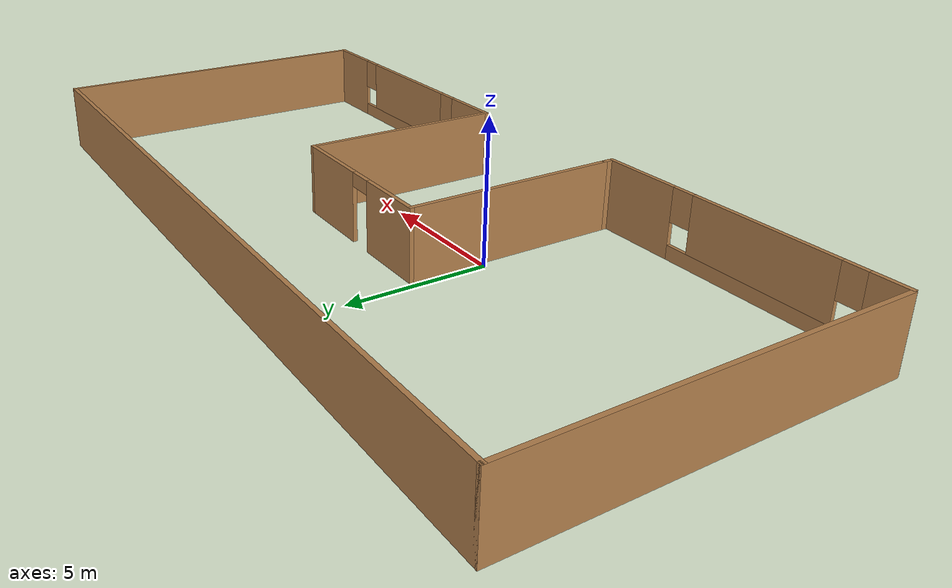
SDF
<?xml version='1.0'?>
<sdf version='1.7'>
  <model name='room'>
    <pose>3.70318 1.20762 0 0 -0 0</pose>
    <link name='Wall_30'>
      <collision name='Wall_30_Collision'>
        <geometry>
          <box>
            <size>13.25 0.15 2.5</size>
          </box>
        </geometry>
        <pose>0 0 1.25 0 -0 0</pose>
      </collision>
      <visual name='Wall_30_Visual'>
        <pose>0 0 1.25 0 -0 0</pose>
        <geometry>
          <box>
            <size>13.25 0.15 2.5</size>
          </box>
        </geometry>
        <material>
          <script>
            <uri>file://media/materials/scripts/gazebo.material</uri>
            <name>Gazebo/Wood</name>
          </script>
          <ambient>1 1 1 1</ambient>
        </material>
        <meta>
          <layer>0</layer>
        </meta>
      </visual>
      <pose>-14.3 0.049999 0 0 -0 1.5708</pose>
    </link>
    <link name='Wall_31'>
      <collision name='Wall_31_Collision'>
        <geometry>
          <box>
            <size>28.75 0.15 2.5</size>
          </box>
        </geometry>
        <pose>0 0 1.25 0 -0 0</pose>
      </collision>
      <visual name='Wall_31_Visual'>
        <pose>0 0 1.25 0 -0 0</pose>
        <geometry>
          <box>
            <size>28.75 0.15 2.5</size>
          </box>
        </geometry>
        <material>
          <script>
            <uri>file://media/materials/scripts/gazebo.material</uri>
            <name>Gazebo/Wood</name>
          </script>
          <ambient>1 1 1 1</ambient>
        </material>
        <meta>
          <layer>0</layer>
        </meta>
      </visual>
      <pose>-0 6.6 0 0 -0 0</pose>
    </link>
    <link name='Wall_34'>
      <collision name='Wall_34_Collision'>
        <geometry>
          <box>
            <size>12.75 0.15 2.5</size>
          </box>
        </geometry>
        <pose>0 0 1.25 0 -0 0</pose>
      </collision>
      <visual name='Wall_34_Visual'>
        <pose>0 0 1.25 0 -0 0</pose>
        <geometry>
          <box>
            <size>12.75 0.15 2.5</size>
          </box>
        </geometry>
        <material>
          <script>
            <uri>file://media/materials/scripts/gazebo.material</uri>
            <name>Gazebo/Wood</name>
          </script>
          <ambient>1 1 1 1</ambient>
        </material>
        <meta>
          <layer>0</layer>
        </meta>
      </visual>
      <pose>14.3 0.299999 0 0 -0 -1.5708</pose>
    </link>
    <link name='Wall_37'>
      <pose>8.625 -6 0 0 -0 3.14159</pose>
      <visual name='Wall_37_Visual_0'>
        <pose>-4.55074 0 1.25 0 -0 0</pose>
        <geometry>
          <box>
            <size>2.39852 0.15 2.5</size>
          </box>
        </geometry>
        <material>
          <script>
            <uri>file://media/materials/scripts/gazebo.material</uri>
            <name>Gazebo/Wood</name>
          </script>
          <ambient>1 1 1 1</ambient>
        </material>
        <meta>
          <layer>0</layer>
        </meta>
      </visual>
      <collision name='Wall_37_Collision_0'>
        <geometry>
          <box>
            <size>2.39852 0.15 2.5</size>
          </box>
        </geometry>
        <pose>-4.55074 0 1.25 0 -0 0</pose>
      </collision>
      <visual name='Wall_37_Visual_1'>
        <pose>1.19926 0 0.25 0 -0 0</pose>
        <geometry>
          <box>
            <size>9.10148 0.15 0.5</size>
          </box>
        </geometry>
        <material>
          <script>
            <uri>file://media/materials/scripts/gazebo.material</uri>
            <name>Gazebo/Wood</name>
          </script>
          <ambient>1 1 1 1</ambient>
        </material>
        <meta>
          <layer>0</layer>
        </meta>
      </visual>
      <collision name='Wall_37_Collision_1'>
        <geometry>
          <box>
            <size>9.10148 0.15 0.5</size>
          </box>
        </geometry>
        <pose>1.19926 0 0.25 0 -0 0</pose>
      </collision>
      <visual name='Wall_37_Visual_2'>
        <pose>0.05985 0 1.5 0 -0 0</pose>
        <geometry>
          <box>
            <size>5.22267 0.15 2</size>
          </box>
        </geometry>
        <material>
          <script>
            <uri>file://media/materials/scripts/gazebo.material</uri>
            <name>Gazebo/Wood</name>
          </script>
          <ambient>1 1 1 1</ambient>
        </material>
        <meta>
          <layer>0</layer>
        </meta>
      </visual>
      <collision name='Wall_37_Collision_2'>
        <geometry>
          <box>
            <size>5.22267 0.15 2</size>
          </box>
        </geometry>
        <pose>0.05985 0 1.5 0 -0 0</pose>
      </collision>
      <visual name='Wall_37_Visual_3'>
        <pose>4.61059 0 1.5 0 -0 0</pose>
        <geometry>
          <box>
            <size>2.27882 0.15 2</size>
          </box>
        </geometry>
        <material>
          <script>
            <uri>file://media/materials/scripts/gazebo.material</uri>
            <name>Gazebo/Wood</name>
          </script>
          <ambient>1 1 1 1</ambient>
        </material>
        <meta>
          <layer>0</layer>
        </meta>
      </visual>
      <collision name='Wall_37_Collision_3'>
        <geometry>
          <box>
            <size>2.27882 0.15 2</size>
          </box>
        </geometry>
        <pose>4.61059 0 1.5 0 -0 0</pose>
      </collision>
      <visual name='Wall_37_Visual_4'>
        <pose>-2.95148 0 1.9 0 -0 0</pose>
        <geometry>
          <box>
            <size>0.8 0.15 1.2</size>
          </box>
        </geometry>
        <material>
          <script>
            <uri>file://media/materials/scripts/gazebo.material</uri>
            <name>Gazebo/Wood</name>
          </script>
          <ambient>1 1 1 1</ambient>
        </material>
        <meta>
          <layer>0</layer>
        </meta>
      </visual>
      <collision name='Wall_37_Collision_4'>
        <geometry>
          <box>
            <size>0.8 0.15 1.2</size>
          </box>
        </geometry>
        <pose>-2.95148 0 1.9 0 -0 0</pose>
      </collision>
      <visual name='Wall_37_Visual_5'>
        <pose>3.07118 0 1.9 0 -0 0</pose>
        <geometry>
          <box>
            <size>0.8 0.15 1.2</size>
          </box>
        </geometry>
        <material>
          <script>
            <uri>file://media/materials/scripts/gazebo.material</uri>
            <name>Gazebo/Wood</name>
          </script>
          <ambient>1 1 1 1</ambient>
        </material>
        <meta>
          <layer>0</layer>
        </meta>
      </visual>
      <collision name='Wall_37_Collision_5'>
        <geometry>
          <box>
            <size>0.8 0.15 1.2</size>
          </box>
        </geometry>
        <pose>3.07118 0 1.9 0 -0 0</pose>
      </collision>
    </link>
    <link name='Wall_38'>
      <collision name='Wall_38_Collision'>
        <geometry>
          <box>
            <size>7.5 0.15 2.5</size>
          </box>
        </geometry>
        <pose>0 0 1.25 0 -0 0</pose>
      </collision>
      <visual name='Wall_38_Visual'>
        <pose>0 0 1.25 0 -0 0</pose>
        <geometry>
          <box>
            <size>7.5 0.15 2.5</size>
          </box>
        </geometry>
        <material>
          <script>
            <uri>file://media/materials/scripts/gazebo.material</uri>
            <name>Gazebo/Wood</name>
          </script>
          <ambient>1 1 1 1</ambient>
        </material>
        <meta>
          <layer>0</layer>
        </meta>
      </visual>
      <pose>2.95 -2.325 0 0 -0 1.5708</pose>
    </link>
    <link name='Wall_39'>
      <pose>-0.225 1.35 0 0 -0 3.14159</pose>
      <visual name='Wall_39_Visual_0'>
        <pose>-1.75696 0 1.25 0 -0 0</pose>
        <geometry>
          <box>
            <size>2.98608 0.15 2.5</size>
          </box>
        </geometry>
        <material>
          <script>
            <uri>file://media/materials/scripts/gazebo.material</uri>
            <name>Gazebo/Wood</name>
          </script>
          <ambient>1 1 1 1</ambient>
        </material>
        <meta>
          <layer>0</layer>
        </meta>
      </visual>
      <collision name='Wall_39_Collision_0'>
        <geometry>
          <box>
            <size>2.98608 0.15 2.5</size>
          </box>
        </geometry>
        <pose>-1.75696 0 1.25 0 -0 0</pose>
      </collision>
      <visual name='Wall_39_Visual_1'>
        <pose>1.94304 0 1.25 0 -0 0</pose>
        <geometry>
          <box>
            <size>2.61392 0.15 2.5</size>
          </box>
        </geometry>
        <material>
          <script>
            <uri>file://media/materials/scripts/gazebo.material</uri>
            <name>Gazebo/Wood</name>
          </script>
          <ambient>1 1 1 1</ambient>
        </material>
        <meta>
          <layer>0</layer>
        </meta>
      </visual>
      <collision name='Wall_39_Collision_1'>
        <geometry>
          <box>
            <size>2.61392 0.15 2.5</size>
          </box>
        </geometry>
        <pose>1.94304 0 1.25 0 -0 0</pose>
      </collision>
      <visual name='Wall_39_Visual_2'>
        <pose>0.186082 0 2.25 0 -0 0</pose>
        <geometry>
          <box>
            <size>0.9 0.15 0.5</size>
          </box>
        </geometry>
        <material>
          <script>
            <uri>file://media/materials/scripts/gazebo.material</uri>
            <name>Gazebo/Wood</name>
          </script>
          <ambient>1 1 1 1</ambient>
        </material>
        <meta>
          <layer>0</layer>
        </meta>
      </visual>
      <collision name='Wall_39_Collision_2'>
        <geometry>
          <box>
            <size>0.9 0.15 0.5</size>
          </box>
        </geometry>
        <pose>0.186082 0 2.25 0 -0 0</pose>
      </collision>
    </link>
    <link name='Wall_40'>
      <collision name='Wall_40_Collision'>
        <geometry>
          <box>
            <size>7.75 0.15 2.5</size>
          </box>
        </geometry>
        <pose>0 0 1.25 0 -0 0</pose>
      </collision>
      <visual name='Wall_40_Visual'>
        <pose>0 0 1.25 0 -0 0</pose>
        <geometry>
          <box>
            <size>7.75 0.15 2.5</size>
          </box>
        </geometry>
        <material>
          <script>
            <uri>file://media/materials/scripts/gazebo.material</uri>
            <name>Gazebo/Wood</name>
          </script>
          <ambient>1 1 1 1</ambient>
        </material>
        <meta>
          <layer>0</layer>
        </meta>
      </visual>
      <pose>-3.4 -2.45 0 0 -0 -1.5708</pose>
    </link>
    <link name='Wall_41'>
      <collision name='Wall_41_Collision'>
        <geometry>
          <box>
            <size>0.5 0.15 2.5</size>
          </box>
        </geometry>
        <pose>0 0 1.25 0 -0 0</pose>
      </collision>
      <visual name='Wall_41_Visual'>
        <pose>0 0 1.25 0 -0 0</pose>
        <geometry>
          <box>
            <size>0.5 0.15 2.5</size>
          </box>
        </geometry>
        <material>
          <script>
            <uri>file://media/materials/scripts/gazebo.material</uri>
            <name>Gazebo/Wood</name>
          </script>
          <ambient>1 1 1 1</ambient>
        </material>
        <meta>
          <layer>0</layer>
        </meta>
      </visual>
      <pose>-3.4 -6.425 0 0 -0 -1.5708</pose>
    </link>
    <link name='Wall_42'>
      <pose>-8.825 -6.6 0 0 -0 3.14159</pose>
      <visual name='Wall_42_Visual_0'>
        <pose>-4.0407 0 1.25 0 -0 0</pose>
        <geometry>
          <box>
            <size>2.9186 0.15 2.5</size>
          </box>
        </geometry>
        <material>
          <script>
            <uri>file://media/materials/scripts/gazebo.material</uri>
            <name>Gazebo/Wood</name>
          </script>
          <ambient>1 1 1 1</ambient>
        </material>
        <meta>
          <layer>0</layer>
        </meta>
      </visual>
      <collision name='Wall_42_Collision_0'>
        <geometry>
          <box>
            <size>2.9186 0.15 2.5</size>
          </box>
        </geometry>
        <pose>-4.0407 0 1.25 0 -0 0</pose>
      </collision>
      <visual name='Wall_42_Visual_1'>
        <pose>1.4593 0 0.25 0 -0 0</pose>
        <geometry>
          <box>
            <size>8.0814 0.15 0.5</size>
          </box>
        </geometry>
        <material>
          <script>
            <uri>file://media/materials/scripts/gazebo.material</uri>
            <name>Gazebo/Wood</name>
          </script>
          <ambient>1 1 1 1</ambient>
        </material>
        <meta>
          <layer>0</layer>
        </meta>
      </visual>
      <collision name='Wall_42_Collision_1'>
        <geometry>
          <box>
            <size>8.0814 0.15 0.5</size>
          </box>
        </geometry>
        <pose>1.4593 0 0.25 0 -0 0</pose>
      </collision>
      <visual name='Wall_42_Visual_2'>
        <pose>0.829932 0 1.5 0 -0 0</pose>
        <geometry>
          <box>
            <size>5.22267 0.15 2</size>
          </box>
        </geometry>
        <material>
          <script>
            <uri>file://media/materials/scripts/gazebo.material</uri>
            <name>Gazebo/Wood</name>
          </script>
          <ambient>1 1 1 1</ambient>
        </material>
        <meta>
          <layer>0</layer>
        </meta>
      </visual>
      <collision name='Wall_42_Collision_2'>
        <geometry>
          <box>
            <size>5.22267 0.15 2</size>
          </box>
        </geometry>
        <pose>0.829932 0 1.5 0 -0 0</pose>
      </collision>
      <visual name='Wall_42_Visual_3'>
        <pose>4.87063 0 1.5 0 -0 0</pose>
        <geometry>
          <box>
            <size>1.25874 0.15 2</size>
          </box>
        </geometry>
        <material>
          <script>
            <uri>file://media/materials/scripts/gazebo.material</uri>
            <name>Gazebo/Wood</name>
          </script>
          <ambient>1 1 1 1</ambient>
        </material>
        <meta>
          <layer>0</layer>
        </meta>
      </visual>
      <collision name='Wall_42_Collision_3'>
        <geometry>
          <box>
            <size>1.25874 0.15 2</size>
          </box>
        </geometry>
        <pose>4.87063 0 1.5 0 -0 0</pose>
      </collision>
      <visual name='Wall_42_Visual_4'>
        <pose>-2.1814 0 1.9 0 -0 0</pose>
        <geometry>
          <box>
            <size>0.8 0.15 1.2</size>
          </box>
        </geometry>
        <material>
          <script>
            <uri>file://media/materials/scripts/gazebo.material</uri>
            <name>Gazebo/Wood</name>
          </script>
          <ambient>1 1 1 1</ambient>
        </material>
        <meta>
          <layer>0</layer>
        </meta>
      </visual>
      <collision name='Wall_42_Collision_4'>
        <geometry>
          <box>
            <size>0.8 0.15 1.2</size>
          </box>
        </geometry>
        <pose>-2.1814 0 1.9 0 -0 0</pose>
      </collision>
      <visual name='Wall_42_Visual_5'>
        <pose>3.84126 0 1.9 0 -0 0</pose>
        <geometry>
          <box>
            <size>0.8 0.15 1.2</size>
          </box>
        </geometry>
        <material>
          <script>
            <uri>file://media/materials/scripts/gazebo.material</uri>
            <name>Gazebo/Wood</name>
          </script>
          <ambient>1 1 1 1</ambient>
        </material>
        <meta>
          <layer>0</layer>
        </meta>
      </visual>
      <collision name='Wall_42_Collision_5'>
        <geometry>
          <box>
            <size>0.8 0.15 1.2</size>
          </box>
        </geometry>
        <pose>3.84126 0 1.9 0 -0 0</pose>
      </collision>
    </link>
    <static>1</static>
  </model>
</sdf>
